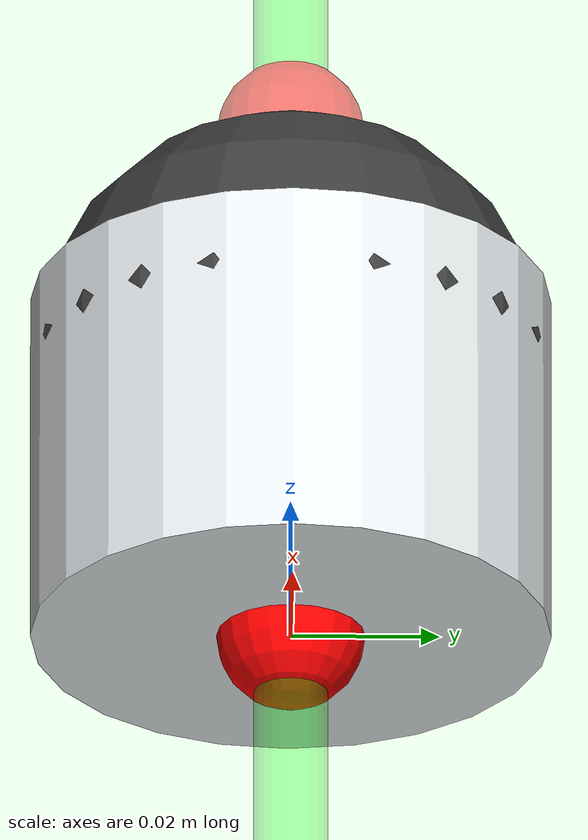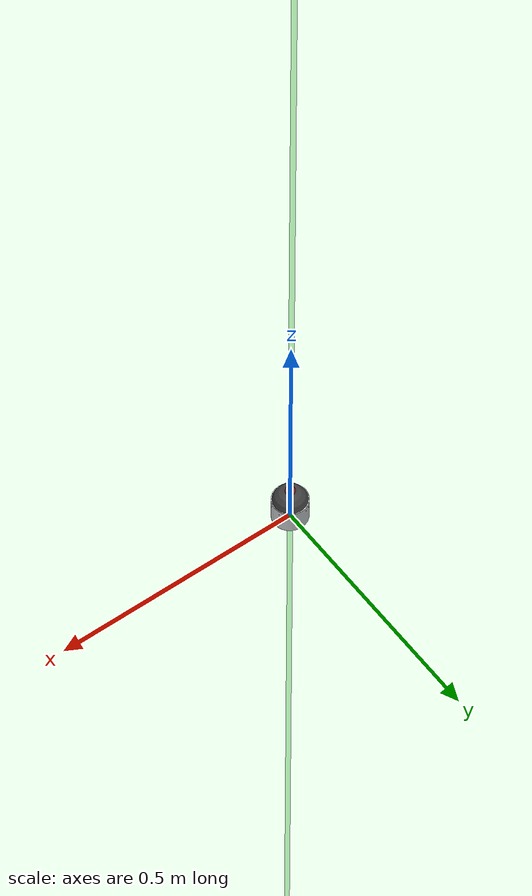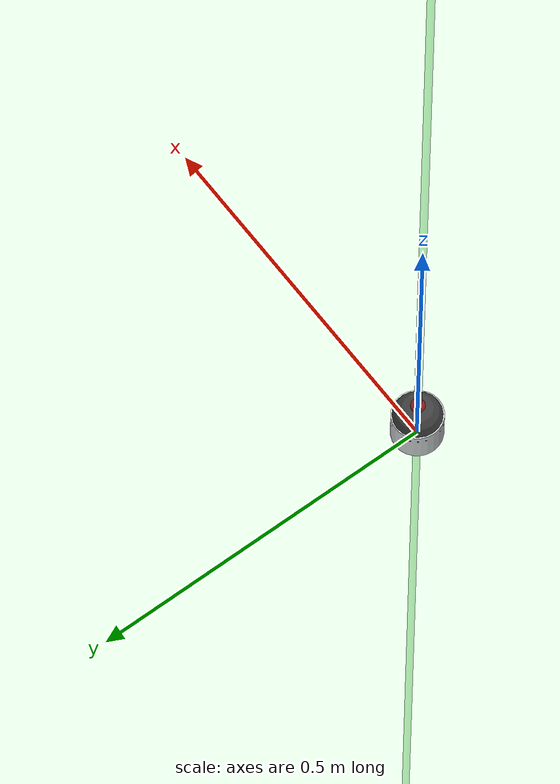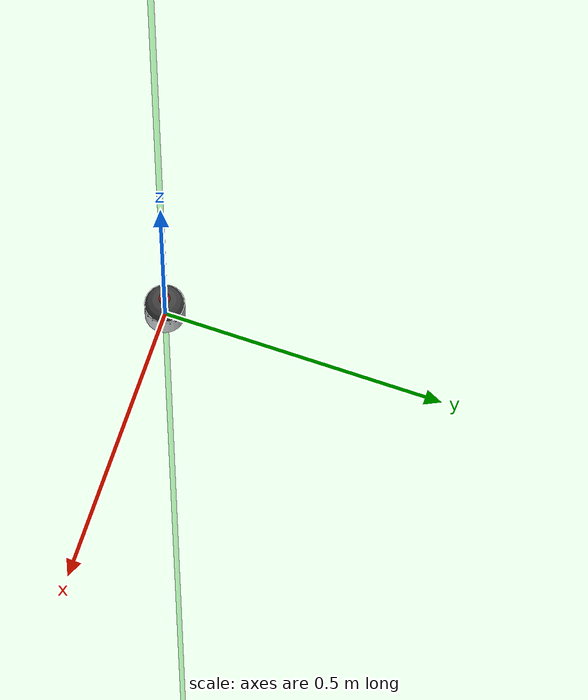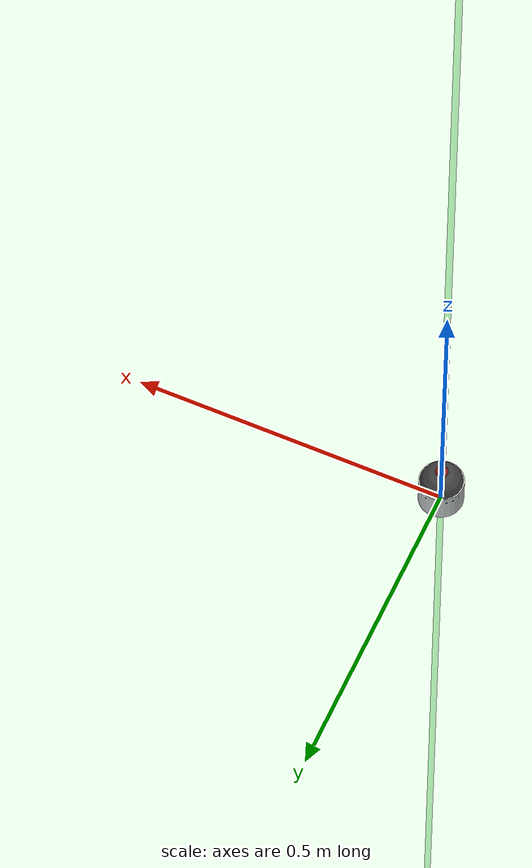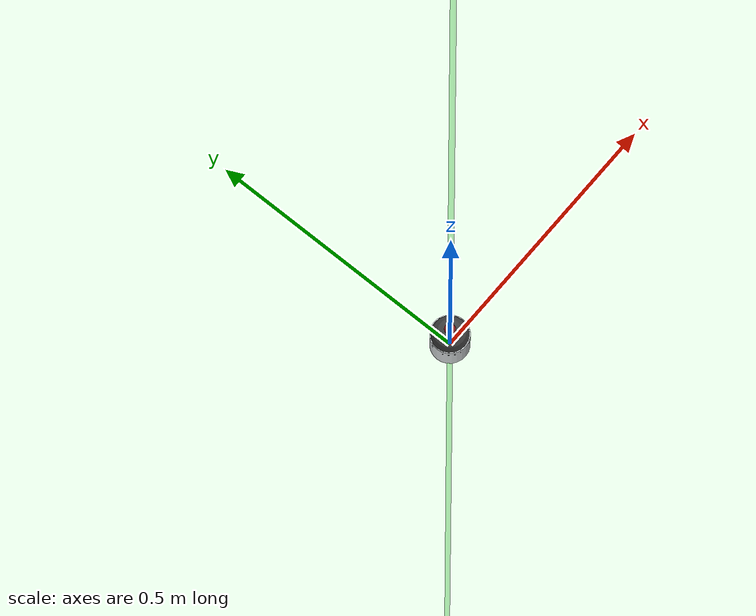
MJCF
<mujoco model="spherical_hand">
    <asset>
        <texture type="cube" name="grey_plastic_tex" builtin="flat" width="100" height="100" rgb1="1 1 1" rgb2="1 1 1"/>
        <texture type="cube" name="carbon_tex" builtin="flat" width="100" height="100" rgb1="1 1 1" rgb2="1 1 1"/>
        <material name="grey_plastic_hand" texture="grey_plastic_tex" rgba="0.88 0.86 0.86 1" />
        <material name="carbon_support" texture="carbon_tex" rgba="0.05 0.05 0.05 1" />
        <material name="Shell001_001_001_003" specular="0.5" shininess="0.45" rgba="0.250000 0.250000 0.250000 1.000000"/>
        <material name="Face636_001" specular="0.5" shininess="0.45" rgba="0.901961 0.921569 0.929412 1.000000"/>
    </asset>
    <worldbody>
        <body name="sphere_gripper" pos="0 0 0.015">
            <site name="ft_frame" pos="0 0 -0.015" size="0.01" rgba="1 0 0 1" type="sphere" group="1"/>
            <inertial pos="0 0 0" mass="0.3" diaginertia="0.09 0.07 0.05"/>
            <geom type="cylinder" pos="0 0 0.01" size="0.035 0.025 " name="box_support_vis" conaffinity="0" group="1" contype="0" material="Face636_001" friction="1 0.5 0.01"/>

            <body name="finger" pos= "0 0 0.025">
                <inertial pos="0 0 0" mass="0.05" diaginertia="0.09 0.07 0.05"/>
                <geom type="sphere" mass="0.1" pos="0 0 0" solimp="0.9 0.95 0.1 0.9 0.2" solref="0.001 2.5" size="0.035" name="sphere_gripper_vis" contype="1" conaffinity="1" group="1" material="Shell001_001_001_003" condim= "4" friction="1.2 0.5 0.01"/>
            </body>

            <body name="eef" pos="0 0 0.060" >
                <site name="grip_site" pos="0 0 0" size="0.01" rgba="1 0 0 0.5" type="sphere" group="1"/>
                <site name="ee_x" pos="0.1 0 0" size="0.005 .1" rgba="1 0 0 0" type="cylinder" group="1"/>
                <site name="ee_y" pos="0 0.1 0" size="0.005 .1" rgba="0 1 0 0" type="cylinder" group="1"/>
                <site name="ee_z" pos="0 0 0.1" size="0.005 .1" rgba="0 0 1 0" type="cylinder" group="1"/>
                <site name="grip_site_cylinder" pos="0 0 0" size="0.005 10" rgba="0 1 0 0.3" type="cylinder" group="1"/>
            </body>
        </body>
    </worldbody>
    <sensor>
        <force name="force_ee" site="ft_frame"/>
        <torque name="torque_ee" site="ft_frame"/>
    </sensor>
</mujoco>
